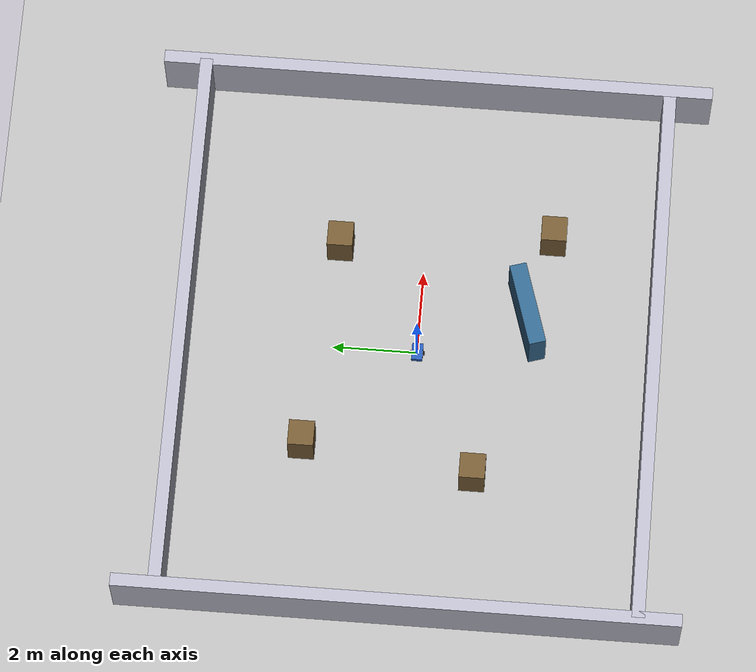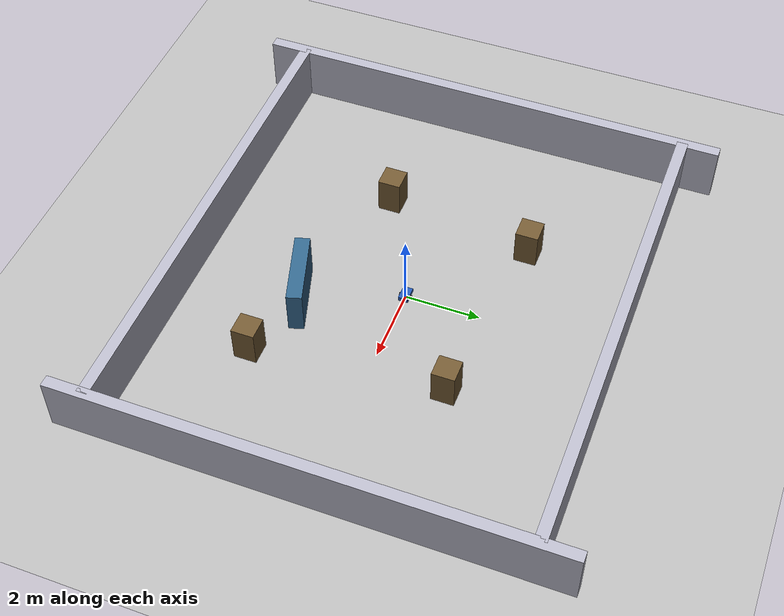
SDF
<?xml version="1.0" ?>
<sdf version="1.9">
  <world name="amr_world">

    <physics name="default" type="ode">
      <max_step_size>0.001</max_step_size>
      <real_time_factor>1.0</real_time_factor>
      <real_time_update_rate>1000</real_time_update_rate>
    </physics>

    <plugin filename="gz-sim-physics-system" name="gz::sim::systems::Physics"/>
    <plugin filename="gz-sim-user-commands-system" name="gz::sim::systems::UserCommands"/>
    <plugin filename="gz-sim-scene-broadcaster-system" name="gz::sim::systems::SceneBroadcaster"/>
    <plugin filename="gz-sim-sensors-system" name="gz::sim::systems::Sensors"/>
    <plugin filename="gz-sim-contact-system" name="gz::sim::systems::Contact"/>
    <plugin filename="gz-sim-imu-system" name="gz::sim::systems::Imu"/>

    <model name="ground_plane">
      <static>true</static>
      <link name="link">
        <collision name="collision">
          <geometry><plane><normal>0 0 1</normal><size>40 40</size></plane></geometry>
          <surface><friction><ode><mu>1.0</mu><mu2>1.0</mu2></ode></friction></surface>
        </collision>
        <visual name="visual">
          <geometry><plane><normal>0 0 1</normal><size>40 40</size></plane></geometry>
          <material><ambient>0.72 0.72 0.72 1</ambient><diffuse>0.72 0.72 0.72 1</diffuse></material>
        </visual>
      </link>
    </model>

    <light type="directional" name="sun">
      <cast_shadows>true</cast_shadows>
      <pose>0 0 10 0 0 0</pose>
      <diffuse>0.8 0.8 0.8 1</diffuse>
      <specular>0.2 0.2 0.2 1</specular>
      <direction>-0.5 0.1 -0.9</direction>
    </light>

    <model name="room">
      <static>true</static>
      <link name="wall_north">
        <collision name="c">
          <pose>0 5.5 0.75 0 0 0</pose>
          <geometry><box><size>13 0.3 1.5</size></box></geometry>
        </collision>
        <visual name="v">
          <pose>0 5.5 0.75 0 0 0</pose>
          <geometry><box><size>13 0.3 1.5</size></box></geometry>
          <material><ambient>0.72 0.72 0.78 1</ambient><diffuse>0.72 0.72 0.78 1</diffuse></material>
        </visual>
      </link>
      <link name="wall_south">
        <collision name="c">
          <pose>0 -5.5 0.75 0 0 0</pose>
          <geometry><box><size>13 0.3 1.5</size></box></geometry>
        </collision>
        <visual name="v">
          <pose>0 -5.5 0.75 0 0 0</pose>
          <geometry><box><size>13 0.3 1.5</size></box></geometry>
          <material><ambient>0.72 0.72 0.78 1</ambient><diffuse>0.72 0.72 0.78 1</diffuse></material>
        </visual>
      </link>
      <link name="wall_west">
        <collision name="c">
          <pose>-6.5 0 0.75 0 0 0</pose>
          <geometry><box><size>0.3 13 1.5</size></box></geometry>
        </collision>
        <visual name="v">
          <pose>-6.5 0 0.75 0 0 0</pose>
          <geometry><box><size>0.3 13 1.5</size></box></geometry>
          <material><ambient>0.72 0.72 0.78 1</ambient><diffuse>0.72 0.72 0.78 1</diffuse></material>
        </visual>
      </link>
      <link name="wall_east">
        <collision name="c">
          <pose>6.5 0 0.75 0 0 0</pose>
          <geometry><box><size>0.3 13 1.5</size></box></geometry>
        </collision>
        <visual name="v">
          <pose>6.5 0 0.75 0 0 0</pose>
          <geometry><box><size>0.3 13 1.5</size></box></geometry>
          <material><ambient>0.72 0.72 0.78 1</ambient><diffuse>0.72 0.72 0.78 1</diffuse></material>
        </visual>
      </link>
    </model>

    <model name="obstacles">
      <static>true</static>
      <link name="pillar_1">
        <collision name="c">
          <pose>2.5 2.0 0.5 0 0 0</pose>
          <geometry><box><size>0.6 0.6 1.0</size></box></geometry>
        </collision>
        <visual name="v">
          <pose>2.5 2.0 0.5 0 0 0</pose>
          <geometry><box><size>0.6 0.6 1.0</size></box></geometry>
          <material><ambient>0.45 0.35 0.2 1</ambient><diffuse>0.45 0.35 0.2 1</diffuse></material>
        </visual>
      </link>
      <link name="pillar_2">
        <collision name="c">
          <pose>3.0 -3.0 0.5 0 0 0</pose>
          <geometry><box><size>0.6 0.6 1.0</size></box></geometry>
        </collision>
        <visual name="v">
          <pose>3.0 -3.0 0.5 0 0 0</pose>
          <geometry><box><size>0.6 0.6 1.0</size></box></geometry>
          <material><ambient>0.45 0.35 0.2 1</ambient><diffuse>0.45 0.35 0.2 1</diffuse></material>
        </visual>
      </link>
      <link name="pillar_3">
        <collision name="c">
          <pose>-2.5 2.5 0.5 0 0 0</pose>
          <geometry><box><size>0.6 0.6 1.0</size></box></geometry>
        </collision>
        <visual name="v">
          <pose>-2.5 2.5 0.5 0 0 0</pose>
          <geometry><box><size>0.6 0.6 1.0</size></box></geometry>
          <material><ambient>0.45 0.35 0.2 1</ambient><diffuse>0.45 0.35 0.2 1</diffuse></material>
        </visual>
      </link>
      <link name="pillar_4">
        <collision name="c">
          <pose>-3.0 -1.5 0.5 0 0 0</pose>
          <geometry><box><size>0.6 0.6 1.0</size></box></geometry>
        </collision>
        <visual name="v">
          <pose>-3.0 -1.5 0.5 0 0 0</pose>
          <geometry><box><size>0.6 0.6 1.0</size></box></geometry>
          <material><ambient>0.45 0.35 0.2 1</ambient><diffuse>0.45 0.35 0.2 1</diffuse></material>
        </visual>
      </link>
      <link name="shelf">
        <collision name="c">
          <pose>1.0 -2.5 0.6 0 0 0.3</pose>
          <geometry><box><size>2.0 0.4 1.2</size></box></geometry>
        </collision>
        <visual name="v">
          <pose>1.0 -2.5 0.6 0 0 0.3</pose>
          <geometry><box><size>2.0 0.4 1.2</size></box></geometry>
          <material><ambient>0.2 0.4 0.55 1</ambient><diffuse>0.2 0.4 0.55 1</diffuse></material>
        </visual>
      </link>
    </model>

    <model name="amr">
      <pose>0 0 0 0 0 0</pose>

      <link name="base_link">
        <inertial>
          <pose>-0.03 0 0.09 0 0 0</pose>
          <mass>5.0</mass>
          <inertia>
            <ixx>0.06</ixx><iyy>0.05</iyy><izz>0.08</izz>
            <ixy>0</ixy><ixz>0</ixz><iyz>0</iyz>
          </inertia>
        </inertial>
        <collision name="c">
          <!-- Keep the chassis clear of the floor so only wheels/caster contact it. -->
          <pose>0 0 0.09 0 0 0</pose>
          <geometry><box><size>0.4 0.26 0.12</size></box></geometry>
          <surface><friction><ode><mu>0.7</mu><mu2>0.7</mu2></ode></friction></surface>
        </collision>
        <visual name="v">
          <pose>0 0 0.09 0 0 0</pose>
          <geometry><box><size>0.4 0.26 0.12</size></box></geometry>
          <material><ambient>0.15 0.35 0.7 1</ambient><diffuse>0.15 0.35 0.7 1</diffuse></material>
        </visual>
      </link>

      <link name="left_wheel">
        <!-- ROS convention: +Y is the robot's left side. -->
        <pose relative_to="base_link">0 0.15 0.05 0 0 0</pose>
        <inertial>
          <mass>0.2</mass>
          <inertia>
            <ixx>0.0002</ixx><iyy>0.0002</iyy><izz>0.0002</izz>
            <ixy>0</ixy><ixz>0</ixz><iyz>0</iyz>
          </inertia>
        </inertial>
        <collision name="c">
          <pose>0 0 0 1.5707963 0 0</pose>
          <geometry><cylinder><radius>0.05</radius><length>0.03</length></cylinder></geometry>
          <surface><friction><ode><mu>1.2</mu><mu2>1.2</mu2></ode></friction></surface>
        </collision>
        <visual name="v">
          <pose>0 0 0 1.5707963 0 0</pose>
          <geometry><cylinder><radius>0.05</radius><length>0.03</length></cylinder></geometry>
          <material><ambient>0.08 0.08 0.08 1</ambient><diffuse>0.08 0.08 0.08 1</diffuse></material>
        </visual>
      </link>

      <link name="right_wheel">
        <pose relative_to="base_link">0 -0.15 0.05 0 0 0</pose>
        <inertial>
          <mass>0.2</mass>
          <inertia>
            <ixx>0.0002</ixx><iyy>0.0002</iyy><izz>0.0002</izz>
            <ixy>0</ixy><ixz>0</ixz><iyz>0</iyz>
          </inertia>
        </inertial>
        <collision name="c">
          <pose>0 0 0 1.5707963 0 0</pose>
          <geometry><cylinder><radius>0.05</radius><length>0.03</length></cylinder></geometry>
          <surface><friction><ode><mu>1.2</mu><mu2>1.2</mu2></ode></friction></surface>
        </collision>
        <visual name="v">
          <pose>0 0 0 1.5707963 0 0</pose>
          <geometry><cylinder><radius>0.05</radius><length>0.03</length></cylinder></geometry>
          <material><ambient>0.08 0.08 0.08 1</ambient><diffuse>0.08 0.08 0.08 1</diffuse></material>
        </visual>
      </link>

      <link name="caster">
        <pose relative_to="base_link">-0.14 0 0.02 0 0 0</pose>
        <inertial>
          <mass>0.05</mass>
          <inertia>
            <ixx>0.0001</ixx><iyy>0.0001</iyy><izz>0.0001</izz>
            <ixy>0</ixy><ixz>0</ixz><iyz>0</iyz>
          </inertia>
        </inertial>
        <collision name="c">
          <geometry><sphere><radius>0.02</radius></sphere></geometry>
        </collision>
        <visual name="v">
          <geometry><sphere><radius>0.02</radius></sphere></geometry>
          <material><ambient>0.2 0.2 0.2 1</ambient><diffuse>0.2 0.2 0.2 1</diffuse></material>
        </visual>
      </link>

      <link name="lidar_link">
        <pose relative_to="base_link">0 0 0.20 0 0 0</pose>
        <inertial>
          <mass>0.05</mass>
          <inertia>
            <ixx>0.0001</ixx><iyy>0.0001</iyy><izz>0.0001</izz>
            <ixy>0</ixy><ixz>0</ixz><iyz>0</iyz>
          </inertia>
        </inertial>
        <visual name="v">
          <geometry><cylinder><radius>0.03</radius><length>0.02</length></cylinder></geometry>
          <material><ambient>0.9 0.9 0.9 1</ambient><diffuse>0.9 0.9 0.9 1</diffuse></material>
        </visual>
        <sensor type="gpu_lidar" name="lidar">
          <pose>0 0 0.02 0 0 0</pose>
          <topic>/scan</topic>
          <update_rate>10</update_rate>
          <always_on>1</always_on>
          <visualize>true</visualize>
          <lidar>
            <scan>
              <horizontal>
                <samples>360</samples>
                <resolution>1</resolution>
                <min_angle>-3.14159265358979</min_angle>
                <max_angle>3.14159265358979</max_angle>
              </horizontal>
              <vertical>
                <samples>1</samples>
                <resolution>1</resolution>
                <min_angle>0</min_angle>
                <max_angle>0</max_angle>
              </vertical>
            </scan>
            <range>
              <min>0.15</min>
              <max>12.0</max>
            </range>
          </lidar>
        </sensor>
      </link>

      <joint name="left_wheel_joint" type="revolute">
        <parent>base_link</parent>
        <child>left_wheel</child>
        <pose relative_to="left_wheel">0 0 0 0 0 0</pose>
        <axis><xyz expressed_in="base_link">0 1 0</xyz></axis>
      </joint>

      <joint name="right_wheel_joint" type="revolute">
        <parent>base_link</parent>
        <child>right_wheel</child>
        <pose relative_to="right_wheel">0 0 0 0 0 0</pose>
        <axis><xyz expressed_in="base_link">0 1 0</xyz></axis>
      </joint>

      <joint name="caster_joint" type="fixed">
        <parent>base_link</parent>
        <child>caster</child>
        <pose relative_to="caster">0 0 0 0 0 0</pose>
      </joint>

      <joint name="lidar_joint" type="fixed">
        <parent>base_link</parent>
        <child>lidar_link</child>
        <pose relative_to="lidar_link">0 0 0 0 0 0</pose>
      </joint>

      <plugin filename="gz-sim-diff-drive-system" name="gz::sim::systems::DiffDrive">
        <left_joint>left_wheel_joint</left_joint>
        <right_joint>right_wheel_joint</right_joint>
        <wheel_separation>0.30</wheel_separation>
        <wheel_radius>0.05</wheel_radius>
        <odom_publish_frequency>20</odom_publish_frequency>
        <topic>/model/amr/cmd_vel</topic>
        <odom_topic>/model/amr/odometry</odom_topic>
        <publish_odom>true</publish_odom>
        <publish_wheel_tf>false</publish_wheel_tf>
      </plugin>

    </model>
  </world>
</sdf>
